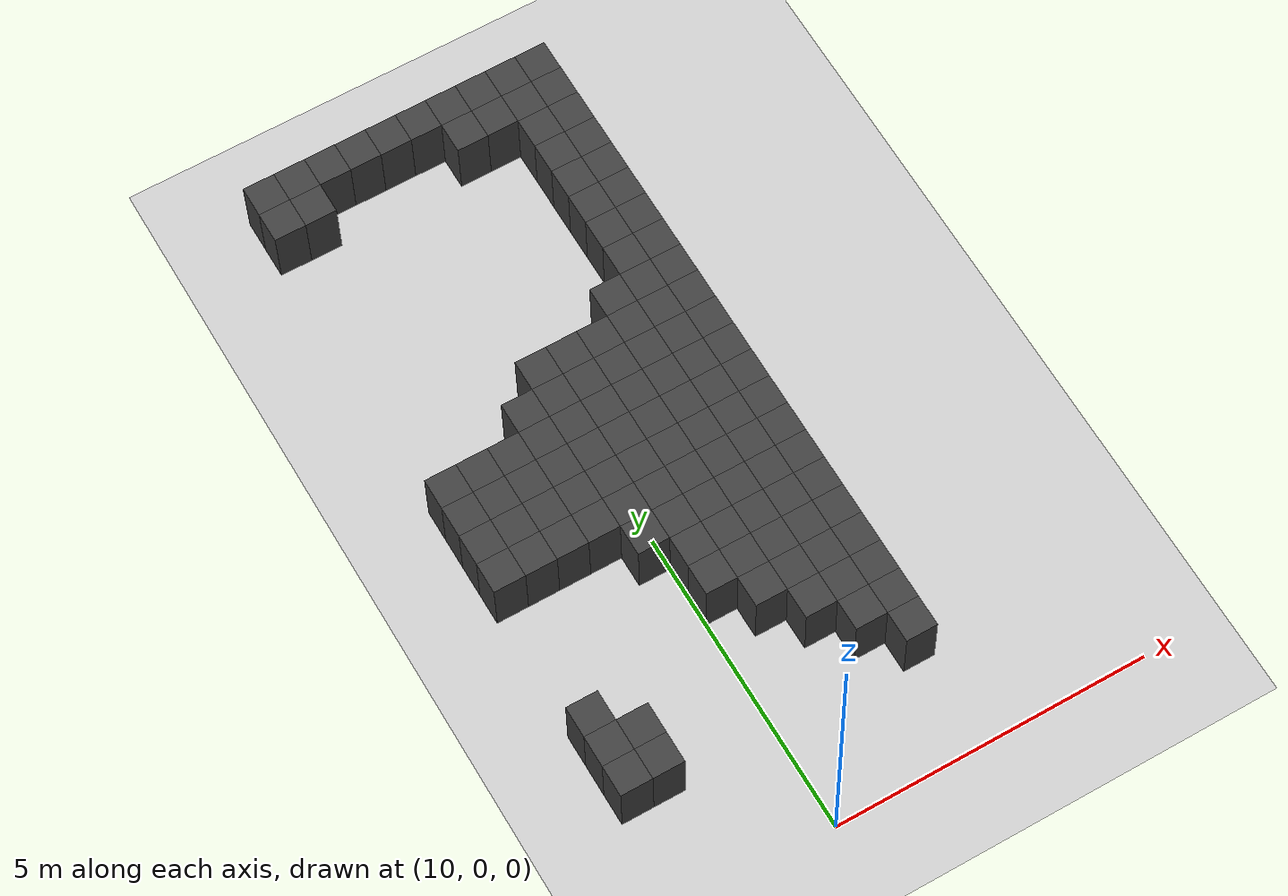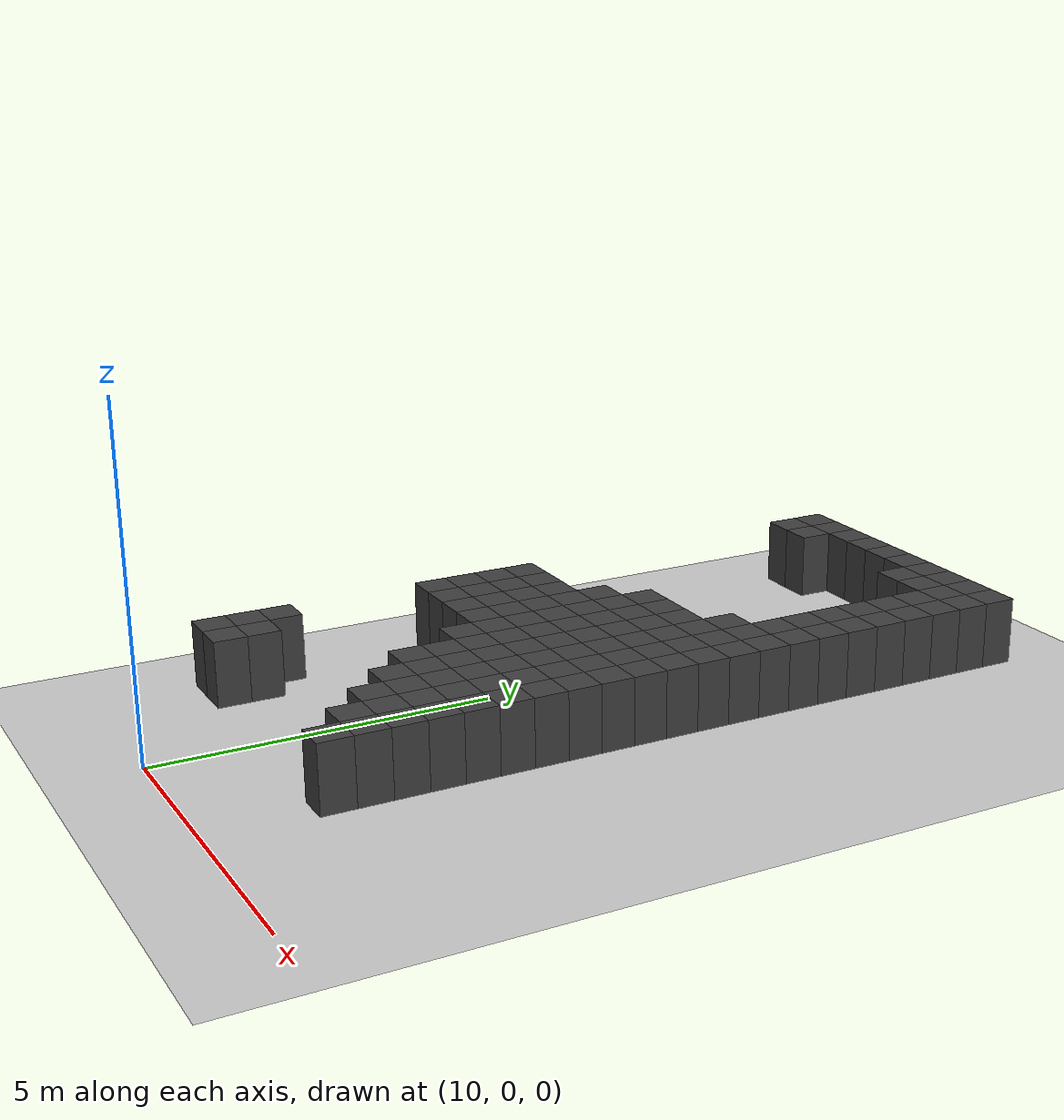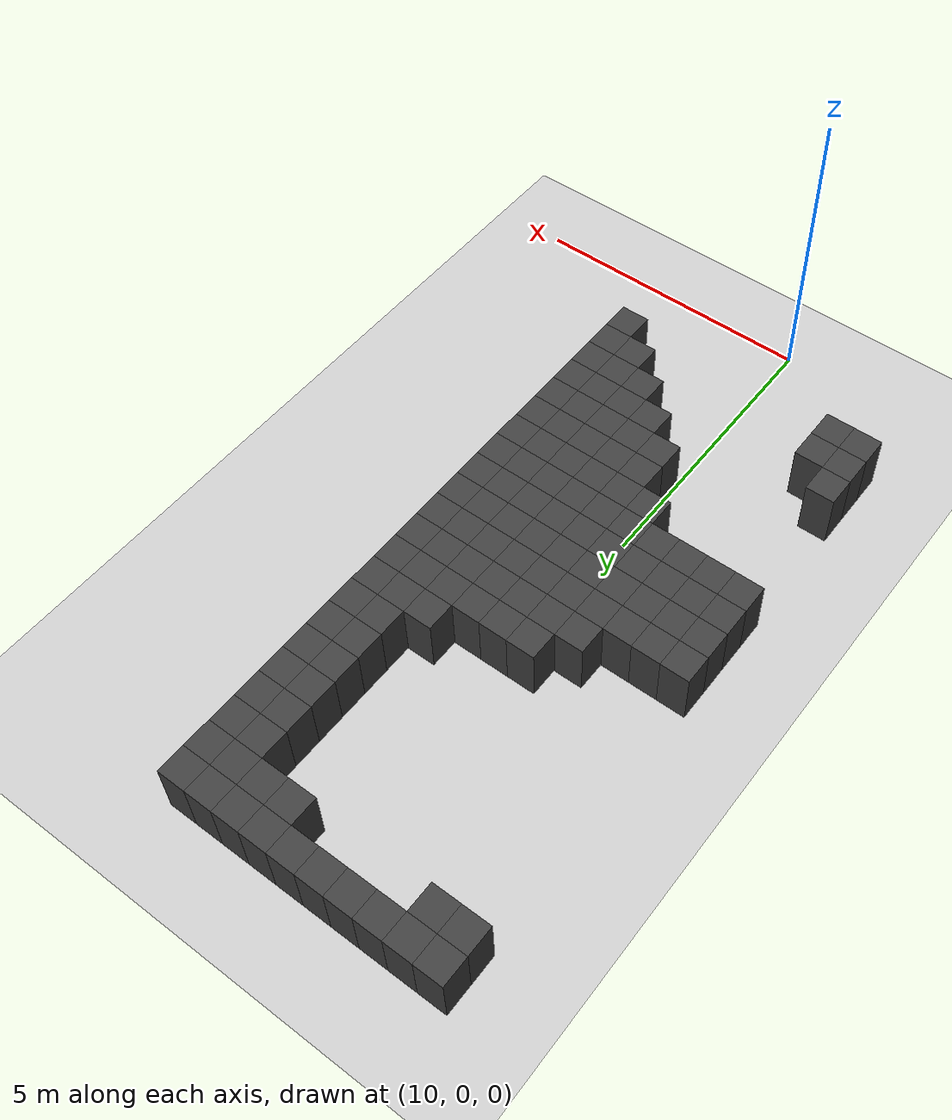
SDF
<sdf version="1.7">
 <world name="map_9152">
  <model name="ground_plane">
   <static>true</static>
   <link name="link">
    <collision name="collision">
     <geometry><plane><normal>0 0 1</normal><size>200 200</size></plane></geometry>
    </collision>
    <visual name="visual">
     <geometry><plane><normal>0 0 1</normal><size>200 200</size></plane></geometry>
     <material><ambient>0.8 0.8 0.8 1</ambient><diffuse>0.8 0.8 0.8 1</diffuse></material>
    </visual>
   </link>
  </model>
  <model name="maze_environment">
   <static>true</static>
   <link name="wall_40">
    <pose>7.750 12.250 0.500 0 0 0</pose>
    <collision name="col"><geometry><box><size>0.5 0.5 1.0</size></box></geometry></collision>
    <visual name="vis">
     <geometry><box><size>0.5 0.5 1.0</size></box></geometry>
     <material><ambient>0.15 0.15 0.15 1</ambient><diffuse>0.25 0.25 0.25 1</diffuse></material>
    </visual>
   </link>
   <link name="wall_41">
    <pose>8.250 12.250 0.500 0 0 0</pose>
    <collision name="col"><geometry><box><size>0.5 0.5 1.0</size></box></geometry></collision>
    <visual name="vis">
     <geometry><box><size>0.5 0.5 1.0</size></box></geometry>
     <material><ambient>0.15 0.15 0.15 1</ambient><diffuse>0.25 0.25 0.25 1</diffuse></material>
    </visual>
   </link>
   <link name="wall_42">
    <pose>8.750 12.250 0.500 0 0 0</pose>
    <collision name="col"><geometry><box><size>0.5 0.5 1.0</size></box></geometry></collision>
    <visual name="vis">
     <geometry><box><size>0.5 0.5 1.0</size></box></geometry>
     <material><ambient>0.15 0.15 0.15 1</ambient><diffuse>0.25 0.25 0.25 1</diffuse></material>
    </visual>
   </link>
   <link name="wall_43">
    <pose>9.250 12.250 0.500 0 0 0</pose>
    <collision name="col"><geometry><box><size>0.5 0.5 1.0</size></box></geometry></collision>
    <visual name="vis">
     <geometry><box><size>0.5 0.5 1.0</size></box></geometry>
     <material><ambient>0.15 0.15 0.15 1</ambient><diffuse>0.25 0.25 0.25 1</diffuse></material>
    </visual>
   </link>
   <link name="wall_44">
    <pose>9.750 12.250 0.500 0 0 0</pose>
    <collision name="col"><geometry><box><size>0.5 0.5 1.0</size></box></geometry></collision>
    <visual name="vis">
     <geometry><box><size>0.5 0.5 1.0</size></box></geometry>
     <material><ambient>0.15 0.15 0.15 1</ambient><diffuse>0.25 0.25 0.25 1</diffuse></material>
    </visual>
   </link>
   <link name="wall_45">
    <pose>10.250 12.250 0.500 0 0 0</pose>
    <collision name="col"><geometry><box><size>0.5 0.5 1.0</size></box></geometry></collision>
    <visual name="vis">
     <geometry><box><size>0.5 0.5 1.0</size></box></geometry>
     <material><ambient>0.15 0.15 0.15 1</ambient><diffuse>0.25 0.25 0.25 1</diffuse></material>
    </visual>
   </link>
   <link name="wall_46">
    <pose>10.750 12.250 0.500 0 0 0</pose>
    <collision name="col"><geometry><box><size>0.5 0.5 1.0</size></box></geometry></collision>
    <visual name="vis">
     <geometry><box><size>0.5 0.5 1.0</size></box></geometry>
     <material><ambient>0.15 0.15 0.15 1</ambient><diffuse>0.25 0.25 0.25 1</diffuse></material>
    </visual>
   </link>
   <link name="wall_47">
    <pose>11.250 12.250 0.500 0 0 0</pose>
    <collision name="col"><geometry><box><size>0.5 0.5 1.0</size></box></geometry></collision>
    <visual name="vis">
     <geometry><box><size>0.5 0.5 1.0</size></box></geometry>
     <material><ambient>0.15 0.15 0.15 1</ambient><diffuse>0.25 0.25 0.25 1</diffuse></material>
    </visual>
   </link>
   <link name="wall_48">
    <pose>11.750 12.250 0.500 0 0 0</pose>
    <collision name="col"><geometry><box><size>0.5 0.5 1.0</size></box></geometry></collision>
    <visual name="vis">
     <geometry><box><size>0.5 0.5 1.0</size></box></geometry>
     <material><ambient>0.15 0.15 0.15 1</ambient><diffuse>0.25 0.25 0.25 1</diffuse></material>
    </visual>
   </link>
   <link name="wall_49">
    <pose>12.250 12.250 0.500 0 0 0</pose>
    <collision name="col"><geometry><box><size>0.5 0.5 1.0</size></box></geometry></collision>
    <visual name="vis">
     <geometry><box><size>0.5 0.5 1.0</size></box></geometry>
     <material><ambient>0.15 0.15 0.15 1</ambient><diffuse>0.25 0.25 0.25 1</diffuse></material>
    </visual>
   </link>
   <link name="wall_83">
    <pose>7.750 11.750 0.500 0 0 0</pose>
    <collision name="col"><geometry><box><size>0.5 0.5 1.0</size></box></geometry></collision>
    <visual name="vis">
     <geometry><box><size>0.5 0.5 1.0</size></box></geometry>
     <material><ambient>0.15 0.15 0.15 1</ambient><diffuse>0.25 0.25 0.25 1</diffuse></material>
    </visual>
   </link>
   <link name="wall_84">
    <pose>8.250 11.750 0.500 0 0 0</pose>
    <collision name="col"><geometry><box><size>0.5 0.5 1.0</size></box></geometry></collision>
    <visual name="vis">
     <geometry><box><size>0.5 0.5 1.0</size></box></geometry>
     <material><ambient>0.15 0.15 0.15 1</ambient><diffuse>0.25 0.25 0.25 1</diffuse></material>
    </visual>
   </link>
   <link name="wall_85">
    <pose>10.750 11.750 0.500 0 0 0</pose>
    <collision name="col"><geometry><box><size>0.5 0.5 1.0</size></box></geometry></collision>
    <visual name="vis">
     <geometry><box><size>0.5 0.5 1.0</size></box></geometry>
     <material><ambient>0.15 0.15 0.15 1</ambient><diffuse>0.25 0.25 0.25 1</diffuse></material>
    </visual>
   </link>
   <link name="wall_86">
    <pose>11.250 11.750 0.500 0 0 0</pose>
    <collision name="col"><geometry><box><size>0.5 0.5 1.0</size></box></geometry></collision>
    <visual name="vis">
     <geometry><box><size>0.5 0.5 1.0</size></box></geometry>
     <material><ambient>0.15 0.15 0.15 1</ambient><diffuse>0.25 0.25 0.25 1</diffuse></material>
    </visual>
   </link>
   <link name="wall_87">
    <pose>11.750 11.750 0.500 0 0 0</pose>
    <collision name="col"><geometry><box><size>0.5 0.5 1.0</size></box></geometry></collision>
    <visual name="vis">
     <geometry><box><size>0.5 0.5 1.0</size></box></geometry>
     <material><ambient>0.15 0.15 0.15 1</ambient><diffuse>0.25 0.25 0.25 1</diffuse></material>
    </visual>
   </link>
   <link name="wall_88">
    <pose>12.250 11.750 0.500 0 0 0</pose>
    <collision name="col"><geometry><box><size>0.5 0.5 1.0</size></box></geometry></collision>
    <visual name="vis">
     <geometry><box><size>0.5 0.5 1.0</size></box></geometry>
     <material><ambient>0.15 0.15 0.15 1</ambient><diffuse>0.25 0.25 0.25 1</diffuse></material>
    </visual>
   </link>
   <link name="wall_113">
    <pose>11.750 11.250 0.500 0 0 0</pose>
    <collision name="col"><geometry><box><size>0.5 0.5 1.0</size></box></geometry></collision>
    <visual name="vis">
     <geometry><box><size>0.5 0.5 1.0</size></box></geometry>
     <material><ambient>0.15 0.15 0.15 1</ambient><diffuse>0.25 0.25 0.25 1</diffuse></material>
    </visual>
   </link>
   <link name="wall_114">
    <pose>12.250 11.250 0.500 0 0 0</pose>
    <collision name="col"><geometry><box><size>0.5 0.5 1.0</size></box></geometry></collision>
    <visual name="vis">
     <geometry><box><size>0.5 0.5 1.0</size></box></geometry>
     <material><ambient>0.15 0.15 0.15 1</ambient><diffuse>0.25 0.25 0.25 1</diffuse></material>
    </visual>
   </link>
   <link name="wall_127">
    <pose>11.750 10.750 0.500 0 0 0</pose>
    <collision name="col"><geometry><box><size>0.5 0.5 1.0</size></box></geometry></collision>
    <visual name="vis">
     <geometry><box><size>0.5 0.5 1.0</size></box></geometry>
     <material><ambient>0.15 0.15 0.15 1</ambient><diffuse>0.25 0.25 0.25 1</diffuse></material>
    </visual>
   </link>
   <link name="wall_128">
    <pose>12.250 10.750 0.500 0 0 0</pose>
    <collision name="col"><geometry><box><size>0.5 0.5 1.0</size></box></geometry></collision>
    <visual name="vis">
     <geometry><box><size>0.5 0.5 1.0</size></box></geometry>
     <material><ambient>0.15 0.15 0.15 1</ambient><diffuse>0.25 0.25 0.25 1</diffuse></material>
    </visual>
   </link>
   <link name="wall_138">
    <pose>11.750 10.250 0.500 0 0 0</pose>
    <collision name="col"><geometry><box><size>0.5 0.5 1.0</size></box></geometry></collision>
    <visual name="vis">
     <geometry><box><size>0.5 0.5 1.0</size></box></geometry>
     <material><ambient>0.15 0.15 0.15 1</ambient><diffuse>0.25 0.25 0.25 1</diffuse></material>
    </visual>
   </link>
   <link name="wall_139">
    <pose>12.250 10.250 0.500 0 0 0</pose>
    <collision name="col"><geometry><box><size>0.5 0.5 1.0</size></box></geometry></collision>
    <visual name="vis">
     <geometry><box><size>0.5 0.5 1.0</size></box></geometry>
     <material><ambient>0.15 0.15 0.15 1</ambient><diffuse>0.25 0.25 0.25 1</diffuse></material>
    </visual>
   </link>
   <link name="wall_144">
    <pose>11.750 9.750 0.500 0 0 0</pose>
    <collision name="col"><geometry><box><size>0.5 0.5 1.0</size></box></geometry></collision>
    <visual name="vis">
     <geometry><box><size>0.5 0.5 1.0</size></box></geometry>
     <material><ambient>0.15 0.15 0.15 1</ambient><diffuse>0.25 0.25 0.25 1</diffuse></material>
    </visual>
   </link>
   <link name="wall_145">
    <pose>12.250 9.750 0.500 0 0 0</pose>
    <collision name="col"><geometry><box><size>0.5 0.5 1.0</size></box></geometry></collision>
    <visual name="vis">
     <geometry><box><size>0.5 0.5 1.0</size></box></geometry>
     <material><ambient>0.15 0.15 0.15 1</ambient><diffuse>0.25 0.25 0.25 1</diffuse></material>
    </visual>
   </link>
   <link name="wall_149">
    <pose>11.750 9.250 0.500 0 0 0</pose>
    <collision name="col"><geometry><box><size>0.5 0.5 1.0</size></box></geometry></collision>
    <visual name="vis">
     <geometry><box><size>0.5 0.5 1.0</size></box></geometry>
     <material><ambient>0.15 0.15 0.15 1</ambient><diffuse>0.25 0.25 0.25 1</diffuse></material>
    </visual>
   </link>
   <link name="wall_150">
    <pose>12.250 9.250 0.500 0 0 0</pose>
    <collision name="col"><geometry><box><size>0.5 0.5 1.0</size></box></geometry></collision>
    <visual name="vis">
     <geometry><box><size>0.5 0.5 1.0</size></box></geometry>
     <material><ambient>0.15 0.15 0.15 1</ambient><diffuse>0.25 0.25 0.25 1</diffuse></material>
    </visual>
   </link>
   <link name="wall_154">
    <pose>11.750 8.750 0.500 0 0 0</pose>
    <collision name="col"><geometry><box><size>0.5 0.5 1.0</size></box></geometry></collision>
    <visual name="vis">
     <geometry><box><size>0.5 0.5 1.0</size></box></geometry>
     <material><ambient>0.15 0.15 0.15 1</ambient><diffuse>0.25 0.25 0.25 1</diffuse></material>
    </visual>
   </link>
   <link name="wall_155">
    <pose>12.250 8.750 0.500 0 0 0</pose>
    <collision name="col"><geometry><box><size>0.5 0.5 1.0</size></box></geometry></collision>
    <visual name="vis">
     <geometry><box><size>0.5 0.5 1.0</size></box></geometry>
     <material><ambient>0.15 0.15 0.15 1</ambient><diffuse>0.25 0.25 0.25 1</diffuse></material>
    </visual>
   </link>
   <link name="wall_161">
    <pose>11.250 8.250 0.500 0 0 0</pose>
    <collision name="col"><geometry><box><size>0.5 0.5 1.0</size></box></geometry></collision>
    <visual name="vis">
     <geometry><box><size>0.5 0.5 1.0</size></box></geometry>
     <material><ambient>0.15 0.15 0.15 1</ambient><diffuse>0.25 0.25 0.25 1</diffuse></material>
    </visual>
   </link>
   <link name="wall_162">
    <pose>11.750 8.250 0.500 0 0 0</pose>
    <collision name="col"><geometry><box><size>0.5 0.5 1.0</size></box></geometry></collision>
    <visual name="vis">
     <geometry><box><size>0.5 0.5 1.0</size></box></geometry>
     <material><ambient>0.15 0.15 0.15 1</ambient><diffuse>0.25 0.25 0.25 1</diffuse></material>
    </visual>
   </link>
   <link name="wall_163">
    <pose>12.250 8.250 0.500 0 0 0</pose>
    <collision name="col"><geometry><box><size>0.5 0.5 1.0</size></box></geometry></collision>
    <visual name="vis">
     <geometry><box><size>0.5 0.5 1.0</size></box></geometry>
     <material><ambient>0.15 0.15 0.15 1</ambient><diffuse>0.25 0.25 0.25 1</diffuse></material>
    </visual>
   </link>
   <link name="wall_170">
    <pose>9.750 7.750 0.500 0 0 0</pose>
    <collision name="col"><geometry><box><size>0.5 0.5 1.0</size></box></geometry></collision>
    <visual name="vis">
     <geometry><box><size>0.5 0.5 1.0</size></box></geometry>
     <material><ambient>0.15 0.15 0.15 1</ambient><diffuse>0.25 0.25 0.25 1</diffuse></material>
    </visual>
   </link>
   <link name="wall_171">
    <pose>10.250 7.750 0.500 0 0 0</pose>
    <collision name="col"><geometry><box><size>0.5 0.5 1.0</size></box></geometry></collision>
    <visual name="vis">
     <geometry><box><size>0.5 0.5 1.0</size></box></geometry>
     <material><ambient>0.15 0.15 0.15 1</ambient><diffuse>0.25 0.25 0.25 1</diffuse></material>
    </visual>
   </link>
   <link name="wall_172">
    <pose>10.750 7.750 0.500 0 0 0</pose>
    <collision name="col"><geometry><box><size>0.5 0.5 1.0</size></box></geometry></collision>
    <visual name="vis">
     <geometry><box><size>0.5 0.5 1.0</size></box></geometry>
     <material><ambient>0.15 0.15 0.15 1</ambient><diffuse>0.25 0.25 0.25 1</diffuse></material>
    </visual>
   </link>
   <link name="wall_173">
    <pose>11.250 7.750 0.500 0 0 0</pose>
    <collision name="col"><geometry><box><size>0.5 0.5 1.0</size></box></geometry></collision>
    <visual name="vis">
     <geometry><box><size>0.5 0.5 1.0</size></box></geometry>
     <material><ambient>0.15 0.15 0.15 1</ambient><diffuse>0.25 0.25 0.25 1</diffuse></material>
    </visual>
   </link>
   <link name="wall_174">
    <pose>11.750 7.750 0.500 0 0 0</pose>
    <collision name="col"><geometry><box><size>0.5 0.5 1.0</size></box></geometry></collision>
    <visual name="vis">
     <geometry><box><size>0.5 0.5 1.0</size></box></geometry>
     <material><ambient>0.15 0.15 0.15 1</ambient><diffuse>0.25 0.25 0.25 1</diffuse></material>
    </visual>
   </link>
   <link name="wall_175">
    <pose>12.250 7.750 0.500 0 0 0</pose>
    <collision name="col"><geometry><box><size>0.5 0.5 1.0</size></box></geometry></collision>
    <visual name="vis">
     <geometry><box><size>0.5 0.5 1.0</size></box></geometry>
     <material><ambient>0.15 0.15 0.15 1</ambient><diffuse>0.25 0.25 0.25 1</diffuse></material>
    </visual>
   </link>
   <link name="wall_182">
    <pose>9.250 7.250 0.500 0 0 0</pose>
    <collision name="col"><geometry><box><size>0.5 0.5 1.0</size></box></geometry></collision>
    <visual name="vis">
     <geometry><box><size>0.5 0.5 1.0</size></box></geometry>
     <material><ambient>0.15 0.15 0.15 1</ambient><diffuse>0.25 0.25 0.25 1</diffuse></material>
    </visual>
   </link>
   <link name="wall_183">
    <pose>9.750 7.250 0.500 0 0 0</pose>
    <collision name="col"><geometry><box><size>0.5 0.5 1.0</size></box></geometry></collision>
    <visual name="vis">
     <geometry><box><size>0.5 0.5 1.0</size></box></geometry>
     <material><ambient>0.15 0.15 0.15 1</ambient><diffuse>0.25 0.25 0.25 1</diffuse></material>
    </visual>
   </link>
   <link name="wall_184">
    <pose>10.250 7.250 0.500 0 0 0</pose>
    <collision name="col"><geometry><box><size>0.5 0.5 1.0</size></box></geometry></collision>
    <visual name="vis">
     <geometry><box><size>0.5 0.5 1.0</size></box></geometry>
     <material><ambient>0.15 0.15 0.15 1</ambient><diffuse>0.25 0.25 0.25 1</diffuse></material>
    </visual>
   </link>
   <link name="wall_185">
    <pose>10.750 7.250 0.500 0 0 0</pose>
    <collision name="col"><geometry><box><size>0.5 0.5 1.0</size></box></geometry></collision>
    <visual name="vis">
     <geometry><box><size>0.5 0.5 1.0</size></box></geometry>
     <material><ambient>0.15 0.15 0.15 1</ambient><diffuse>0.25 0.25 0.25 1</diffuse></material>
    </visual>
   </link>
   <link name="wall_186">
    <pose>11.250 7.250 0.500 0 0 0</pose>
    <collision name="col"><geometry><box><size>0.5 0.5 1.0</size></box></geometry></collision>
    <visual name="vis">
     <geometry><box><size>0.5 0.5 1.0</size></box></geometry>
     <material><ambient>0.15 0.15 0.15 1</ambient><diffuse>0.25 0.25 0.25 1</diffuse></material>
    </visual>
   </link>
   <link name="wall_187">
    <pose>11.750 7.250 0.500 0 0 0</pose>
    <collision name="col"><geometry><box><size>0.5 0.5 1.0</size></box></geometry></collision>
    <visual name="vis">
     <geometry><box><size>0.5 0.5 1.0</size></box></geometry>
     <material><ambient>0.15 0.15 0.15 1</ambient><diffuse>0.25 0.25 0.25 1</diffuse></material>
    </visual>
   </link>
   <link name="wall_188">
    <pose>12.250 7.250 0.500 0 0 0</pose>
    <collision name="col"><geometry><box><size>0.5 0.5 1.0</size></box></geometry></collision>
    <visual name="vis">
     <geometry><box><size>0.5 0.5 1.0</size></box></geometry>
     <material><ambient>0.15 0.15 0.15 1</ambient><diffuse>0.25 0.25 0.25 1</diffuse></material>
    </visual>
   </link>
   <link name="wall_198">
    <pose>7.750 6.750 0.500 0 0 0</pose>
    <collision name="col"><geometry><box><size>0.5 0.5 1.0</size></box></geometry></collision>
    <visual name="vis">
     <geometry><box><size>0.5 0.5 1.0</size></box></geometry>
     <material><ambient>0.15 0.15 0.15 1</ambient><diffuse>0.25 0.25 0.25 1</diffuse></material>
    </visual>
   </link>
   <link name="wall_199">
    <pose>8.250 6.750 0.500 0 0 0</pose>
    <collision name="col"><geometry><box><size>0.5 0.5 1.0</size></box></geometry></collision>
    <visual name="vis">
     <geometry><box><size>0.5 0.5 1.0</size></box></geometry>
     <material><ambient>0.15 0.15 0.15 1</ambient><diffuse>0.25 0.25 0.25 1</diffuse></material>
    </visual>
   </link>
   <link name="wall_200">
    <pose>8.750 6.750 0.500 0 0 0</pose>
    <collision name="col"><geometry><box><size>0.5 0.5 1.0</size></box></geometry></collision>
    <visual name="vis">
     <geometry><box><size>0.5 0.5 1.0</size></box></geometry>
     <material><ambient>0.15 0.15 0.15 1</ambient><diffuse>0.25 0.25 0.25 1</diffuse></material>
    </visual>
   </link>
   <link name="wall_201">
    <pose>9.250 6.750 0.500 0 0 0</pose>
    <collision name="col"><geometry><box><size>0.5 0.5 1.0</size></box></geometry></collision>
    <visual name="vis">
     <geometry><box><size>0.5 0.5 1.0</size></box></geometry>
     <material><ambient>0.15 0.15 0.15 1</ambient><diffuse>0.25 0.25 0.25 1</diffuse></material>
    </visual>
   </link>
   <link name="wall_202">
    <pose>9.750 6.750 0.500 0 0 0</pose>
    <collision name="col"><geometry><box><size>0.5 0.5 1.0</size></box></geometry></collision>
    <visual name="vis">
     <geometry><box><size>0.5 0.5 1.0</size></box></geometry>
     <material><ambient>0.15 0.15 0.15 1</ambient><diffuse>0.25 0.25 0.25 1</diffuse></material>
    </visual>
   </link>
   <link name="wall_203">
    <pose>10.250 6.750 0.500 0 0 0</pose>
    <collision name="col"><geometry><box><size>0.5 0.5 1.0</size></box></geometry></collision>
    <visual name="vis">
     <geometry><box><size>0.5 0.5 1.0</size></box></geometry>
     <material><ambient>0.15 0.15 0.15 1</ambient><diffuse>0.25 0.25 0.25 1</diffuse></material>
    </visual>
   </link>
   <link name="wall_204">
    <pose>10.750 6.750 0.500 0 0 0</pose>
    <collision name="col"><geometry><box><size>0.5 0.5 1.0</size></box></geometry></collision>
    <visual name="vis">
     <geometry><box><size>0.5 0.5 1.0</size></box></geometry>
     <material><ambient>0.15 0.15 0.15 1</ambient><diffuse>0.25 0.25 0.25 1</diffuse></material>
    </visual>
   </link>
   <link name="wall_205">
    <pose>11.250 6.750 0.500 0 0 0</pose>
    <collision name="col"><geometry><box><size>0.5 0.5 1.0</size></box></geometry></collision>
    <visual name="vis">
     <geometry><box><size>0.5 0.5 1.0</size></box></geometry>
     <material><ambient>0.15 0.15 0.15 1</ambient><diffuse>0.25 0.25 0.25 1</diffuse></material>
    </visual>
   </link>
   <link name="wall_206">
    <pose>11.750 6.750 0.500 0 0 0</pose>
    <collision name="col"><geometry><box><size>0.5 0.5 1.0</size></box></geometry></collision>
    <visual name="vis">
     <geometry><box><size>0.5 0.5 1.0</size></box></geometry>
     <material><ambient>0.15 0.15 0.15 1</ambient><diffuse>0.25 0.25 0.25 1</diffuse></material>
    </visual>
   </link>
   <link name="wall_207">
    <pose>12.250 6.750 0.500 0 0 0</pose>
    <collision name="col"><geometry><box><size>0.5 0.5 1.0</size></box></geometry></collision>
    <visual name="vis">
     <geometry><box><size>0.5 0.5 1.0</size></box></geometry>
     <material><ambient>0.15 0.15 0.15 1</ambient><diffuse>0.25 0.25 0.25 1</diffuse></material>
    </visual>
   </link>
   <link name="wall_221">
    <pose>7.750 6.250 0.500 0 0 0</pose>
    <collision name="col"><geometry><box><size>0.5 0.5 1.0</size></box></geometry></collision>
    <visual name="vis">
     <geometry><box><size>0.5 0.5 1.0</size></box></geometry>
     <material><ambient>0.15 0.15 0.15 1</ambient><diffuse>0.25 0.25 0.25 1</diffuse></material>
    </visual>
   </link>
   <link name="wall_222">
    <pose>8.250 6.250 0.500 0 0 0</pose>
    <collision name="col"><geometry><box><size>0.5 0.5 1.0</size></box></geometry></collision>
    <visual name="vis">
     <geometry><box><size>0.5 0.5 1.0</size></box></geometry>
     <material><ambient>0.15 0.15 0.15 1</ambient><diffuse>0.25 0.25 0.25 1</diffuse></material>
    </visual>
   </link>
   <link name="wall_223">
    <pose>8.750 6.250 0.500 0 0 0</pose>
    <collision name="col"><geometry><box><size>0.5 0.5 1.0</size></box></geometry></collision>
    <visual name="vis">
     <geometry><box><size>0.5 0.5 1.0</size></box></geometry>
     <material><ambient>0.15 0.15 0.15 1</ambient><diffuse>0.25 0.25 0.25 1</diffuse></material>
    </visual>
   </link>
   <link name="wall_224">
    <pose>9.250 6.250 0.500 0 0 0</pose>
    <collision name="col"><geometry><box><size>0.5 0.5 1.0</size></box></geometry></collision>
    <visual name="vis">
     <geometry><box><size>0.5 0.5 1.0</size></box></geometry>
     <material><ambient>0.15 0.15 0.15 1</ambient><diffuse>0.25 0.25 0.25 1</diffuse></material>
    </visual>
   </link>
   <link name="wall_225">
    <pose>9.750 6.250 0.500 0 0 0</pose>
    <collision name="col"><geometry><box><size>0.5 0.5 1.0</size></box></geometry></collision>
    <visual name="vis">
     <geometry><box><size>0.5 0.5 1.0</size></box></geometry>
     <material><ambient>0.15 0.15 0.15 1</ambient><diffuse>0.25 0.25 0.25 1</diffuse></material>
    </visual>
   </link>
   <link name="wall_226">
    <pose>10.250 6.250 0.500 0 0 0</pose>
    <collision name="col"><geometry><box><size>0.5 0.5 1.0</size></box></geometry></collision>
    <visual name="vis">
     <geometry><box><size>0.5 0.5 1.0</size></box></geometry>
     <material><ambient>0.15 0.15 0.15 1</ambient><diffuse>0.25 0.25 0.25 1</diffuse></material>
    </visual>
   </link>
   <link name="wall_227">
    <pose>10.750 6.250 0.500 0 0 0</pose>
    <collision name="col"><geometry><box><size>0.5 0.5 1.0</size></box></geometry></collision>
    <visual name="vis">
     <geometry><box><size>0.5 0.5 1.0</size></box></geometry>
     <material><ambient>0.15 0.15 0.15 1</ambient><diffuse>0.25 0.25 0.25 1</diffuse></material>
    </visual>
   </link>
   <link name="wall_228">
    <pose>11.250 6.250 0.500 0 0 0</pose>
    <collision name="col"><geometry><box><size>0.5 0.5 1.0</size></box></geometry></collision>
    <visual name="vis">
     <geometry><box><size>0.5 0.5 1.0</size></box></geometry>
     <material><ambient>0.15 0.15 0.15 1</ambient><diffuse>0.25 0.25 0.25 1</diffuse></material>
    </visual>
   </link>
   <link name="wall_229">
    <pose>11.750 6.250 0.500 0 0 0</pose>
    <collision name="col"><geometry><box><size>0.5 0.5 1.0</size></box></geometry></collision>
    <visual name="vis">
     <geometry><box><size>0.5 0.5 1.0</size></box></geometry>
     <material><ambient>0.15 0.15 0.15 1</ambient><diffuse>0.25 0.25 0.25 1</diffuse></material>
    </visual>
   </link>
   <link name="wall_230">
    <pose>12.250 6.250 0.500 0 0 0</pose>
    <collision name="col"><geometry><box><size>0.5 0.5 1.0</size></box></geometry></collision>
    <visual name="vis">
     <geometry><box><size>0.5 0.5 1.0</size></box></geometry>
     <material><ambient>0.15 0.15 0.15 1</ambient><diffuse>0.25 0.25 0.25 1</diffuse></material>
    </visual>
   </link>
   <link name="wall_246">
    <pose>7.750 5.750 0.500 0 0 0</pose>
    <collision name="col"><geometry><box><size>0.5 0.5 1.0</size></box></geometry></collision>
    <visual name="vis">
     <geometry><box><size>0.5 0.5 1.0</size></box></geometry>
     <material><ambient>0.15 0.15 0.15 1</ambient><diffuse>0.25 0.25 0.25 1</diffuse></material>
    </visual>
   </link>
   <link name="wall_247">
    <pose>8.250 5.750 0.500 0 0 0</pose>
    <collision name="col"><geometry><box><size>0.5 0.5 1.0</size></box></geometry></collision>
    <visual name="vis">
     <geometry><box><size>0.5 0.5 1.0</size></box></geometry>
     <material><ambient>0.15 0.15 0.15 1</ambient><diffuse>0.25 0.25 0.25 1</diffuse></material>
    </visual>
   </link>
   <link name="wall_248">
    <pose>8.750 5.750 0.500 0 0 0</pose>
    <collision name="col"><geometry><box><size>0.5 0.5 1.0</size></box></geometry></collision>
    <visual name="vis">
     <geometry><box><size>0.5 0.5 1.0</size></box></geometry>
     <material><ambient>0.15 0.15 0.15 1</ambient><diffuse>0.25 0.25 0.25 1</diffuse></material>
    </visual>
   </link>
   <link name="wall_249">
    <pose>9.250 5.750 0.500 0 0 0</pose>
    <collision name="col"><geometry><box><size>0.5 0.5 1.0</size></box></geometry></collision>
    <visual name="vis">
     <geometry><box><size>0.5 0.5 1.0</size></box></geometry>
     <material><ambient>0.15 0.15 0.15 1</ambient><diffuse>0.25 0.25 0.25 1</diffuse></material>
    </visual>
   </link>
   <link name="wall_250">
    <pose>9.750 5.750 0.500 0 0 0</pose>
    <collision name="col"><geometry><box><size>0.5 0.5 1.0</size></box></geometry></collision>
    <visual name="vis">
     <geometry><box><size>0.5 0.5 1.0</size></box></geometry>
     <material><ambient>0.15 0.15 0.15 1</ambient><diffuse>0.25 0.25 0.25 1</diffuse></material>
    </visual>
   </link>
   <link name="wall_251">
    <pose>10.250 5.750 0.500 0 0 0</pose>
    <collision name="col"><geometry><box><size>0.5 0.5 1.0</size></box></geometry></collision>
    <visual name="vis">
     <geometry><box><size>0.5 0.5 1.0</size></box></geometry>
     <material><ambient>0.15 0.15 0.15 1</ambient><diffuse>0.25 0.25 0.25 1</diffuse></material>
    </visual>
   </link>
   <link name="wall_252">
    <pose>10.750 5.750 0.500 0 0 0</pose>
    <collision name="col"><geometry><box><size>0.5 0.5 1.0</size></box></geometry></collision>
    <visual name="vis">
     <geometry><box><size>0.5 0.5 1.0</size></box></geometry>
     <material><ambient>0.15 0.15 0.15 1</ambient><diffuse>0.25 0.25 0.25 1</diffuse></material>
    </visual>
   </link>
   <link name="wall_253">
    <pose>11.250 5.750 0.500 0 0 0</pose>
    <collision name="col"><geometry><box><size>0.5 0.5 1.0</size></box></geometry></collision>
    <visual name="vis">
     <geometry><box><size>0.5 0.5 1.0</size></box></geometry>
     <material><ambient>0.15 0.15 0.15 1</ambient><diffuse>0.25 0.25 0.25 1</diffuse></material>
    </visual>
   </link>
   <link name="wall_254">
    <pose>11.750 5.750 0.500 0 0 0</pose>
    <collision name="col"><geometry><box><size>0.5 0.5 1.0</size></box></geometry></collision>
    <visual name="vis">
     <geometry><box><size>0.5 0.5 1.0</size></box></geometry>
     <material><ambient>0.15 0.15 0.15 1</ambient><diffuse>0.25 0.25 0.25 1</diffuse></material>
    </visual>
   </link>
   <link name="wall_255">
    <pose>12.250 5.750 0.500 0 0 0</pose>
    <collision name="col"><geometry><box><size>0.5 0.5 1.0</size></box></geometry></collision>
    <visual name="vis">
     <geometry><box><size>0.5 0.5 1.0</size></box></geometry>
     <material><ambient>0.15 0.15 0.15 1</ambient><diffuse>0.25 0.25 0.25 1</diffuse></material>
    </visual>
   </link>
   <link name="wall_272">
    <pose>7.750 5.250 0.500 0 0 0</pose>
    <collision name="col"><geometry><box><size>0.5 0.5 1.0</size></box></geometry></collision>
    <visual name="vis">
     <geometry><box><size>0.5 0.5 1.0</size></box></geometry>
     <material><ambient>0.15 0.15 0.15 1</ambient><diffuse>0.25 0.25 0.25 1</diffuse></material>
    </visual>
   </link>
   <link name="wall_273">
    <pose>8.250 5.250 0.500 0 0 0</pose>
    <collision name="col"><geometry><box><size>0.5 0.5 1.0</size></box></geometry></collision>
    <visual name="vis">
     <geometry><box><size>0.5 0.5 1.0</size></box></geometry>
     <material><ambient>0.15 0.15 0.15 1</ambient><diffuse>0.25 0.25 0.25 1</diffuse></material>
    </visual>
   </link>
   <link name="wall_274">
    <pose>8.750 5.250 0.500 0 0 0</pose>
    <collision name="col"><geometry><box><size>0.5 0.5 1.0</size></box></geometry></collision>
    <visual name="vis">
     <geometry><box><size>0.5 0.5 1.0</size></box></geometry>
     <material><ambient>0.15 0.15 0.15 1</ambient><diffuse>0.25 0.25 0.25 1</diffuse></material>
    </visual>
   </link>
   <link name="wall_275">
    <pose>9.250 5.250 0.500 0 0 0</pose>
    <collision name="col"><geometry><box><size>0.5 0.5 1.0</size></box></geometry></collision>
    <visual name="vis">
     <geometry><box><size>0.5 0.5 1.0</size></box></geometry>
     <material><ambient>0.15 0.15 0.15 1</ambient><diffuse>0.25 0.25 0.25 1</diffuse></material>
    </visual>
   </link>
   <link name="wall_276">
    <pose>9.750 5.250 0.500 0 0 0</pose>
    <collision name="col"><geometry><box><size>0.5 0.5 1.0</size></box></geometry></collision>
    <visual name="vis">
     <geometry><box><size>0.5 0.5 1.0</size></box></geometry>
     <material><ambient>0.15 0.15 0.15 1</ambient><diffuse>0.25 0.25 0.25 1</diffuse></material>
    </visual>
   </link>
   <link name="wall_277">
    <pose>10.250 5.250 0.500 0 0 0</pose>
    <collision name="col"><geometry><box><size>0.5 0.5 1.0</size></box></geometry></collision>
    <visual name="vis">
     <geometry><box><size>0.5 0.5 1.0</size></box></geometry>
     <material><ambient>0.15 0.15 0.15 1</ambient><diffuse>0.25 0.25 0.25 1</diffuse></material>
    </visual>
   </link>
   <link name="wall_278">
    <pose>10.750 5.250 0.500 0 0 0</pose>
    <collision name="col"><geometry><box><size>0.5 0.5 1.0</size></box></geometry></collision>
    <visual name="vis">
     <geometry><box><size>0.5 0.5 1.0</size></box></geometry>
     <material><ambient>0.15 0.15 0.15 1</ambient><diffuse>0.25 0.25 0.25 1</diffuse></material>
    </visual>
   </link>
   <link name="wall_279">
    <pose>11.250 5.250 0.500 0 0 0</pose>
    <collision name="col"><geometry><box><size>0.5 0.5 1.0</size></box></geometry></collision>
    <visual name="vis">
     <geometry><box><size>0.5 0.5 1.0</size></box></geometry>
     <material><ambient>0.15 0.15 0.15 1</ambient><diffuse>0.25 0.25 0.25 1</diffuse></material>
    </visual>
   </link>
   <link name="wall_280">
    <pose>11.750 5.250 0.500 0 0 0</pose>
    <collision name="col"><geometry><box><size>0.5 0.5 1.0</size></box></geometry></collision>
    <visual name="vis">
     <geometry><box><size>0.5 0.5 1.0</size></box></geometry>
     <material><ambient>0.15 0.15 0.15 1</ambient><diffuse>0.25 0.25 0.25 1</diffuse></material>
    </visual>
   </link>
   <link name="wall_281">
    <pose>12.250 5.250 0.500 0 0 0</pose>
    <collision name="col"><geometry><box><size>0.5 0.5 1.0</size></box></geometry></collision>
    <visual name="vis">
     <geometry><box><size>0.5 0.5 1.0</size></box></geometry>
     <material><ambient>0.15 0.15 0.15 1</ambient><diffuse>0.25 0.25 0.25 1</diffuse></material>
    </visual>
   </link>
   <link name="wall_295">
    <pose>9.750 4.750 0.500 0 0 0</pose>
    <collision name="col"><geometry><box><size>0.5 0.5 1.0</size></box></geometry></collision>
    <visual name="vis">
     <geometry><box><size>0.5 0.5 1.0</size></box></geometry>
     <material><ambient>0.15 0.15 0.15 1</ambient><diffuse>0.25 0.25 0.25 1</diffuse></material>
    </visual>
   </link>
   <link name="wall_296">
    <pose>10.250 4.750 0.500 0 0 0</pose>
    <collision name="col"><geometry><box><size>0.5 0.5 1.0</size></box></geometry></collision>
    <visual name="vis">
     <geometry><box><size>0.5 0.5 1.0</size></box></geometry>
     <material><ambient>0.15 0.15 0.15 1</ambient><diffuse>0.25 0.25 0.25 1</diffuse></material>
    </visual>
   </link>
   <link name="wall_297">
    <pose>10.750 4.750 0.500 0 0 0</pose>
    <collision name="col"><geometry><box><size>0.5 0.5 1.0</size></box></geometry></collision>
    <visual name="vis">
     <geometry><box><size>0.5 0.5 1.0</size></box></geometry>
     <material><ambient>0.15 0.15 0.15 1</ambient><diffuse>0.25 0.25 0.25 1</diffuse></material>
    </visual>
   </link>
   <link name="wall_298">
    <pose>11.250 4.750 0.500 0 0 0</pose>
    <collision name="col"><geometry><box><size>0.5 0.5 1.0</size></box></geometry></collision>
    <visual name="vis">
     <geometry><box><size>0.5 0.5 1.0</size></box></geometry>
     <material><ambient>0.15 0.15 0.15 1</ambient><diffuse>0.25 0.25 0.25 1</diffuse></material>
    </visual>
   </link>
   <link name="wall_299">
    <pose>11.750 4.750 0.500 0 0 0</pose>
    <collision name="col"><geometry><box><size>0.5 0.5 1.0</size></box></geometry></collision>
    <visual name="vis">
     <geometry><box><size>0.5 0.5 1.0</size></box></geometry>
     <material><ambient>0.15 0.15 0.15 1</ambient><diffuse>0.25 0.25 0.25 1</diffuse></material>
    </visual>
   </link>
   <link name="wall_300">
    <pose>12.250 4.750 0.500 0 0 0</pose>
    <collision name="col"><geometry><box><size>0.5 0.5 1.0</size></box></geometry></collision>
    <visual name="vis">
     <geometry><box><size>0.5 0.5 1.0</size></box></geometry>
     <material><ambient>0.15 0.15 0.15 1</ambient><diffuse>0.25 0.25 0.25 1</diffuse></material>
    </visual>
   </link>
   <link name="wall_307">
    <pose>10.250 4.250 0.500 0 0 0</pose>
    <collision name="col"><geometry><box><size>0.5 0.5 1.0</size></box></geometry></collision>
    <visual name="vis">
     <geometry><box><size>0.5 0.5 1.0</size></box></geometry>
     <material><ambient>0.15 0.15 0.15 1</ambient><diffuse>0.25 0.25 0.25 1</diffuse></material>
    </visual>
   </link>
   <link name="wall_308">
    <pose>10.750 4.250 0.500 0 0 0</pose>
    <collision name="col"><geometry><box><size>0.5 0.5 1.0</size></box></geometry></collision>
    <visual name="vis">
     <geometry><box><size>0.5 0.5 1.0</size></box></geometry>
     <material><ambient>0.15 0.15 0.15 1</ambient><diffuse>0.25 0.25 0.25 1</diffuse></material>
    </visual>
   </link>
   <link name="wall_309">
    <pose>11.250 4.250 0.500 0 0 0</pose>
    <collision name="col"><geometry><box><size>0.5 0.5 1.0</size></box></geometry></collision>
    <visual name="vis">
     <geometry><box><size>0.5 0.5 1.0</size></box></geometry>
     <material><ambient>0.15 0.15 0.15 1</ambient><diffuse>0.25 0.25 0.25 1</diffuse></material>
    </visual>
   </link>
   <link name="wall_310">
    <pose>11.750 4.250 0.500 0 0 0</pose>
    <collision name="col"><geometry><box><size>0.5 0.5 1.0</size></box></geometry></collision>
    <visual name="vis">
     <geometry><box><size>0.5 0.5 1.0</size></box></geometry>
     <material><ambient>0.15 0.15 0.15 1</ambient><diffuse>0.25 0.25 0.25 1</diffuse></material>
    </visual>
   </link>
   <link name="wall_311">
    <pose>12.250 4.250 0.500 0 0 0</pose>
    <collision name="col"><geometry><box><size>0.5 0.5 1.0</size></box></geometry></collision>
    <visual name="vis">
     <geometry><box><size>0.5 0.5 1.0</size></box></geometry>
     <material><ambient>0.15 0.15 0.15 1</ambient><diffuse>0.25 0.25 0.25 1</diffuse></material>
    </visual>
   </link>
   <link name="wall_319">
    <pose>10.250 3.750 0.500 0 0 0</pose>
    <collision name="col"><geometry><box><size>0.5 0.5 1.0</size></box></geometry></collision>
    <visual name="vis">
     <geometry><box><size>0.5 0.5 1.0</size></box></geometry>
     <material><ambient>0.15 0.15 0.15 1</ambient><diffuse>0.25 0.25 0.25 1</diffuse></material>
    </visual>
   </link>
   <link name="wall_320">
    <pose>10.750 3.750 0.500 0 0 0</pose>
    <collision name="col"><geometry><box><size>0.5 0.5 1.0</size></box></geometry></collision>
    <visual name="vis">
     <geometry><box><size>0.5 0.5 1.0</size></box></geometry>
     <material><ambient>0.15 0.15 0.15 1</ambient><diffuse>0.25 0.25 0.25 1</diffuse></material>
    </visual>
   </link>
   <link name="wall_321">
    <pose>11.250 3.750 0.500 0 0 0</pose>
    <collision name="col"><geometry><box><size>0.5 0.5 1.0</size></box></geometry></collision>
    <visual name="vis">
     <geometry><box><size>0.5 0.5 1.0</size></box></geometry>
     <material><ambient>0.15 0.15 0.15 1</ambient><diffuse>0.25 0.25 0.25 1</diffuse></material>
    </visual>
   </link>
   <link name="wall_322">
    <pose>11.750 3.750 0.500 0 0 0</pose>
    <collision name="col"><geometry><box><size>0.5 0.5 1.0</size></box></geometry></collision>
    <visual name="vis">
     <geometry><box><size>0.5 0.5 1.0</size></box></geometry>
     <material><ambient>0.15 0.15 0.15 1</ambient><diffuse>0.25 0.25 0.25 1</diffuse></material>
    </visual>
   </link>
   <link name="wall_323">
    <pose>12.250 3.750 0.500 0 0 0</pose>
    <collision name="col"><geometry><box><size>0.5 0.5 1.0</size></box></geometry></collision>
    <visual name="vis">
     <geometry><box><size>0.5 0.5 1.0</size></box></geometry>
     <material><ambient>0.15 0.15 0.15 1</ambient><diffuse>0.25 0.25 0.25 1</diffuse></material>
    </visual>
   </link>
   <link name="wall_335">
    <pose>10.750 3.250 0.500 0 0 0</pose>
    <collision name="col"><geometry><box><size>0.5 0.5 1.0</size></box></geometry></collision>
    <visual name="vis">
     <geometry><box><size>0.5 0.5 1.0</size></box></geometry>
     <material><ambient>0.15 0.15 0.15 1</ambient><diffuse>0.25 0.25 0.25 1</diffuse></material>
    </visual>
   </link>
   <link name="wall_336">
    <pose>11.250 3.250 0.500 0 0 0</pose>
    <collision name="col"><geometry><box><size>0.5 0.5 1.0</size></box></geometry></collision>
    <visual name="vis">
     <geometry><box><size>0.5 0.5 1.0</size></box></geometry>
     <material><ambient>0.15 0.15 0.15 1</ambient><diffuse>0.25 0.25 0.25 1</diffuse></material>
    </visual>
   </link>
   <link name="wall_337">
    <pose>11.750 3.250 0.500 0 0 0</pose>
    <collision name="col"><geometry><box><size>0.5 0.5 1.0</size></box></geometry></collision>
    <visual name="vis">
     <geometry><box><size>0.5 0.5 1.0</size></box></geometry>
     <material><ambient>0.15 0.15 0.15 1</ambient><diffuse>0.25 0.25 0.25 1</diffuse></material>
    </visual>
   </link>
   <link name="wall_338">
    <pose>12.250 3.250 0.500 0 0 0</pose>
    <collision name="col"><geometry><box><size>0.5 0.5 1.0</size></box></geometry></collision>
    <visual name="vis">
     <geometry><box><size>0.5 0.5 1.0</size></box></geometry>
     <material><ambient>0.15 0.15 0.15 1</ambient><diffuse>0.25 0.25 0.25 1</diffuse></material>
    </visual>
   </link>
   <link name="wall_348">
    <pose>7.750 2.750 0.500 0 0 0</pose>
    <collision name="col"><geometry><box><size>0.5 0.5 1.0</size></box></geometry></collision>
    <visual name="vis">
     <geometry><box><size>0.5 0.5 1.0</size></box></geometry>
     <material><ambient>0.15 0.15 0.15 1</ambient><diffuse>0.25 0.25 0.25 1</diffuse></material>
    </visual>
   </link>
   <link name="wall_349">
    <pose>11.250 2.750 0.500 0 0 0</pose>
    <collision name="col"><geometry><box><size>0.5 0.5 1.0</size></box></geometry></collision>
    <visual name="vis">
     <geometry><box><size>0.5 0.5 1.0</size></box></geometry>
     <material><ambient>0.15 0.15 0.15 1</ambient><diffuse>0.25 0.25 0.25 1</diffuse></material>
    </visual>
   </link>
   <link name="wall_350">
    <pose>11.750 2.750 0.500 0 0 0</pose>
    <collision name="col"><geometry><box><size>0.5 0.5 1.0</size></box></geometry></collision>
    <visual name="vis">
     <geometry><box><size>0.5 0.5 1.0</size></box></geometry>
     <material><ambient>0.15 0.15 0.15 1</ambient><diffuse>0.25 0.25 0.25 1</diffuse></material>
    </visual>
   </link>
   <link name="wall_351">
    <pose>12.250 2.750 0.500 0 0 0</pose>
    <collision name="col"><geometry><box><size>0.5 0.5 1.0</size></box></geometry></collision>
    <visual name="vis">
     <geometry><box><size>0.5 0.5 1.0</size></box></geometry>
     <material><ambient>0.15 0.15 0.15 1</ambient><diffuse>0.25 0.25 0.25 1</diffuse></material>
    </visual>
   </link>
   <link name="wall_360">
    <pose>7.750 2.250 0.500 0 0 0</pose>
    <collision name="col"><geometry><box><size>0.5 0.5 1.0</size></box></geometry></collision>
    <visual name="vis">
     <geometry><box><size>0.5 0.5 1.0</size></box></geometry>
     <material><ambient>0.15 0.15 0.15 1</ambient><diffuse>0.25 0.25 0.25 1</diffuse></material>
    </visual>
   </link>
   <link name="wall_361">
    <pose>8.250 2.250 0.500 0 0 0</pose>
    <collision name="col"><geometry><box><size>0.5 0.5 1.0</size></box></geometry></collision>
    <visual name="vis">
     <geometry><box><size>0.5 0.5 1.0</size></box></geometry>
     <material><ambient>0.15 0.15 0.15 1</ambient><diffuse>0.25 0.25 0.25 1</diffuse></material>
    </visual>
   </link>
   <link name="wall_362">
    <pose>11.750 2.250 0.500 0 0 0</pose>
    <collision name="col"><geometry><box><size>0.5 0.5 1.0</size></box></geometry></collision>
    <visual name="vis">
     <geometry><box><size>0.5 0.5 1.0</size></box></geometry>
     <material><ambient>0.15 0.15 0.15 1</ambient><diffuse>0.25 0.25 0.25 1</diffuse></material>
    </visual>
   </link>
   <link name="wall_363">
    <pose>12.250 2.250 0.500 0 0 0</pose>
    <collision name="col"><geometry><box><size>0.5 0.5 1.0</size></box></geometry></collision>
    <visual name="vis">
     <geometry><box><size>0.5 0.5 1.0</size></box></geometry>
     <material><ambient>0.15 0.15 0.15 1</ambient><diffuse>0.25 0.25 0.25 1</diffuse></material>
    </visual>
   </link>
   <link name="wall_369">
    <pose>7.750 1.750 0.500 0 0 0</pose>
    <collision name="col"><geometry><box><size>0.5 0.5 1.0</size></box></geometry></collision>
    <visual name="vis">
     <geometry><box><size>0.5 0.5 1.0</size></box></geometry>
     <material><ambient>0.15 0.15 0.15 1</ambient><diffuse>0.25 0.25 0.25 1</diffuse></material>
    </visual>
   </link>
   <link name="wall_370">
    <pose>8.250 1.750 0.500 0 0 0</pose>
    <collision name="col"><geometry><box><size>0.5 0.5 1.0</size></box></geometry></collision>
    <visual name="vis">
     <geometry><box><size>0.5 0.5 1.0</size></box></geometry>
     <material><ambient>0.15 0.15 0.15 1</ambient><diffuse>0.25 0.25 0.25 1</diffuse></material>
    </visual>
   </link>
   <link name="wall_371">
    <pose>12.250 1.750 0.500 0 0 0</pose>
    <collision name="col"><geometry><box><size>0.5 0.5 1.0</size></box></geometry></collision>
    <visual name="vis">
     <geometry><box><size>0.5 0.5 1.0</size></box></geometry>
     <material><ambient>0.15 0.15 0.15 1</ambient><diffuse>0.25 0.25 0.25 1</diffuse></material>
    </visual>
   </link>
  </model>
 </world>
</sdf>
